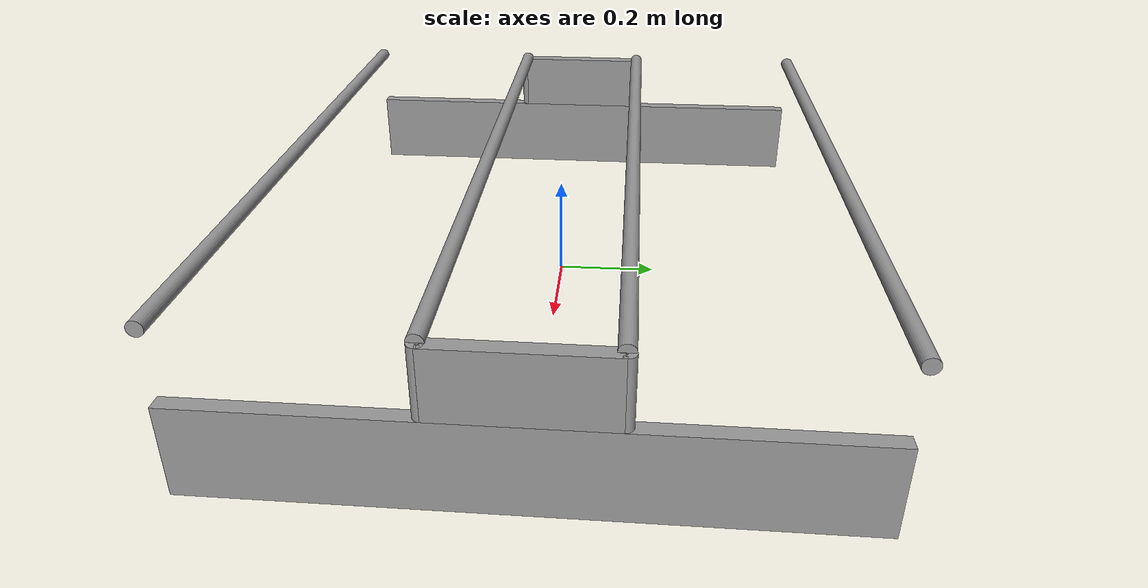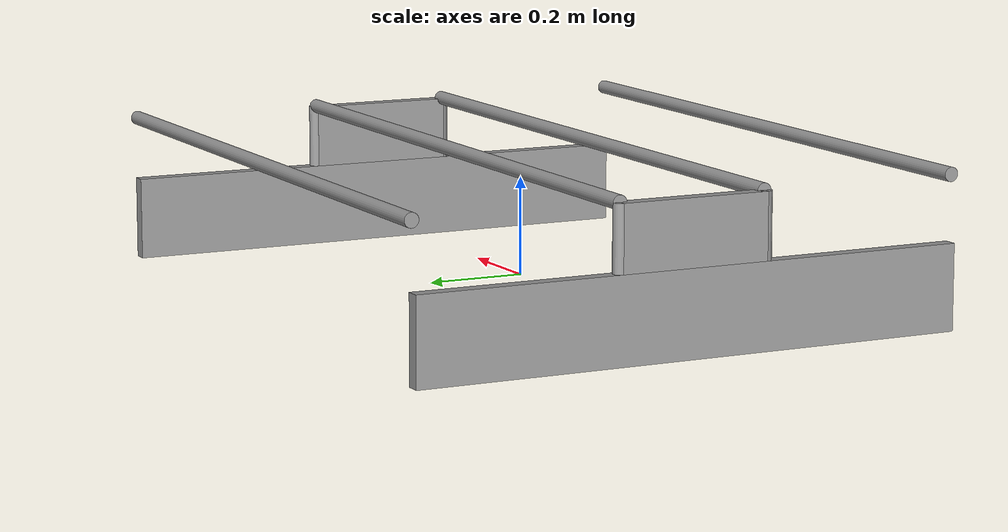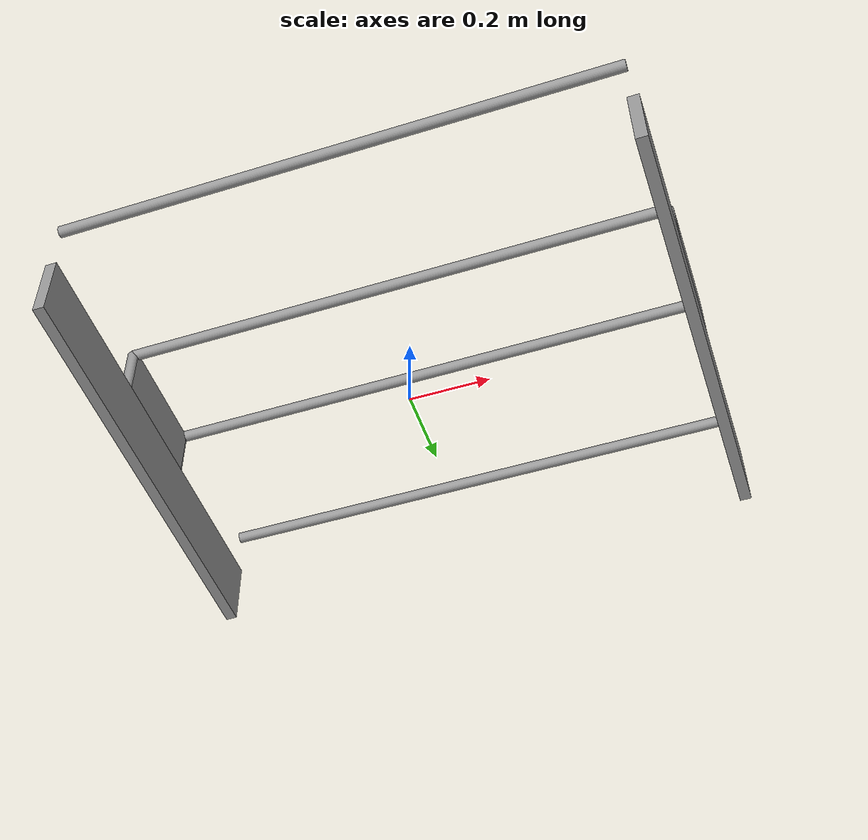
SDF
<?xml version='1.0'?>
<sdf version='1.7'>
  <model name='BlibliTrolley'>
    <link name='link_0'>
      <inertial>
        <mass>1</mass>
        <inertia>
          <ixx>0.166667</ixx>
          <ixy>0</ixy>
          <ixz>0</ixz>
          <iyy>0.166667</iyy>
          <iyz>0</iyz>
          <izz>0.166667</izz>
        </inertia>
        <pose>0 0 0 0 -0 0</pose>
      </inertial>
      <pose>0.7 0 0.050833 0 -0 0</pose>
      <gravity>1</gravity>
      <self_collide>0</self_collide>
      <kinematic>0</kinematic>
      <enable_wind>0</enable_wind>
      <visual name='visual'>
        <pose>0 0 0 0 -0 0</pose>
        <geometry>
          <box>
            <size>0.0284 1.12 0.17</size>
          </box>
        </geometry>
        <material>
          <lighting>1</lighting>
          <script>
            <uri>file://media/materials/scripts/gazebo.material</uri>
            <name>Gazebo/Grey</name>
          </script>
          <shader type='pixel'>
            <normal_map>__default__</normal_map>
          </shader>
          <ambient>0.3 0.3 0.3 1</ambient>
          <diffuse>0.7 0.7 0.7 1</diffuse>
          <specular>0.01 0.01 0.01 1</specular>
          <emissive>0 0 0 1</emissive>
        </material>
        <transparency>0</transparency>
        <cast_shadows>1</cast_shadows>
      </visual>
      <collision name='collision'>
        <laser_retro>0</laser_retro>
        <max_contacts>10</max_contacts>
        <pose>0 0 0 0 -0 0</pose>
        <geometry>
          <box>
            <size>0.0284 1.12 0.17</size>
          </box>
        </geometry>
        <surface>
          <friction>
            <ode>
              <mu>1</mu>
              <mu2>1</mu2>
              <fdir1>0 0 0</fdir1>
              <slip1>0</slip1>
              <slip2>0</slip2>
            </ode>
            <torsional>
              <coefficient>1</coefficient>
              <patch_radius>0</patch_radius>
              <surface_radius>0</surface_radius>
              <use_patch_radius>1</use_patch_radius>
              <ode>
                <slip>0</slip>
              </ode>
            </torsional>
          </friction>
          <bounce>
            <restitution_coefficient>0</restitution_coefficient>
            <threshold>1e+06</threshold>
          </bounce>
          <contact>
            <collide_without_contact>0</collide_without_contact>
            <collide_without_contact_bitmask>1</collide_without_contact_bitmask>
            <collide_bitmask>1</collide_bitmask>
            <ode>
              <soft_cfm>0</soft_cfm>
              <soft_erp>0.2</soft_erp>
              <kp>1e+13</kp>
              <kd>1</kd>
              <max_vel>0.01</max_vel>
              <min_depth>0</min_depth>
            </ode>
            <bullet>
              <split_impulse>1</split_impulse>
              <split_impulse_penetration_threshold>-0.01</split_impulse_penetration_threshold>
              <soft_cfm>0</soft_cfm>
              <soft_erp>0.2</soft_erp>
              <kp>1e+13</kp>
              <kd>1</kd>
            </bullet>
          </contact>
        </surface>
      </collision>
    </link>
    <link name='link_0_clone'>
      <inertial>
        <mass>1</mass>
        <inertia>
          <ixx>0.166667</ixx>
          <ixy>0</ixy>
          <ixz>0</ixz>
          <iyy>0.166667</iyy>
          <iyz>0</iyz>
          <izz>0.166667</izz>
        </inertia>
        <pose>0 0 0 0 -0 0</pose>
      </inertial>
      <pose>-0.7 0 0.050833 0 -0 0</pose>
      <gravity>1</gravity>
      <self_collide>0</self_collide>
      <kinematic>0</kinematic>
      <enable_wind>0</enable_wind>
      <visual name='visual'>
        <pose>0 0 0 0 -0 0</pose>
        <geometry>
          <box>
            <size>0.0284 1.12 0.17</size>
          </box>
        </geometry>
        <material>
          <lighting>1</lighting>
          <script>
            <uri>file://media/materials/scripts/gazebo.material</uri>
            <name>Gazebo/Grey</name>
          </script>
          <shader type='pixel'>
            <normal_map>__default__</normal_map>
          </shader>
          <ambient>0.3 0.3 0.3 1</ambient>
          <diffuse>0.7 0.7 0.7 1</diffuse>
          <specular>0.01 0.01 0.01 1</specular>
          <emissive>0 0 0 1</emissive>
        </material>
        <transparency>0</transparency>
        <cast_shadows>1</cast_shadows>
      </visual>
      <collision name='collision'>
        <laser_retro>0</laser_retro>
        <max_contacts>10</max_contacts>
        <pose>0 0 0 0 -0 0</pose>
        <geometry>
          <box>
            <size>0.0284 1.12 0.17</size>
          </box>
        </geometry>
        <surface>
          <friction>
            <ode>
              <mu>1</mu>
              <mu2>1</mu2>
              <fdir1>0 0 0</fdir1>
              <slip1>0</slip1>
              <slip2>0</slip2>
            </ode>
            <torsional>
              <coefficient>1</coefficient>
              <patch_radius>0</patch_radius>
              <surface_radius>0</surface_radius>
              <use_patch_radius>1</use_patch_radius>
              <ode>
                <slip>0</slip>
              </ode>
            </torsional>
          </friction>
          <bounce>
            <restitution_coefficient>0</restitution_coefficient>
            <threshold>1e+06</threshold>
          </bounce>
          <contact>
            <collide_without_contact>0</collide_without_contact>
            <collide_without_contact_bitmask>1</collide_without_contact_bitmask>
            <collide_bitmask>1</collide_bitmask>
            <ode>
              <soft_cfm>0</soft_cfm>
              <soft_erp>0.2</soft_erp>
              <kp>1e+13</kp>
              <kd>1</kd>
              <max_vel>0.01</max_vel>
              <min_depth>0</min_depth>
            </ode>
            <bullet>
              <split_impulse>1</split_impulse>
              <split_impulse_penetration_threshold>-0.01</split_impulse_penetration_threshold>
              <soft_cfm>0</soft_cfm>
              <soft_erp>0.2</soft_erp>
              <kp>1e+13</kp>
              <kd>1</kd>
            </bullet>
          </contact>
        </surface>
      </collision>
    </link>
    <link name='link_0_clone_clone'>
      <inertial>
        <mass>1</mass>
        <inertia>
          <ixx>0.166667</ixx>
          <ixy>0</ixy>
          <ixz>0</ixz>
          <iyy>0.166667</iyy>
          <iyz>0</iyz>
          <izz>0.166667</izz>
        </inertia>
        <pose>0 0 0 0 -0 0</pose>
      </inertial>
      <pose>-0.7 0 0.200833 0 -0 0</pose>
      <gravity>1</gravity>
      <self_collide>0</self_collide>
      <kinematic>0</kinematic>
      <enable_wind>0</enable_wind>
      <visual name='visual'>
        <pose>0 0 0 0 -0 0</pose>
        <geometry>
          <box>
            <size>0.0284 0.3 0.13</size>
          </box>
        </geometry>
        <material>
          <lighting>1</lighting>
          <script>
            <uri>file://media/materials/scripts/gazebo.material</uri>
            <name>Gazebo/Grey</name>
          </script>
          <shader type='pixel'>
            <normal_map>__default__</normal_map>
          </shader>
          <ambient>0.3 0.3 0.3 1</ambient>
          <diffuse>0.7 0.7 0.7 1</diffuse>
          <specular>0.01 0.01 0.01 1</specular>
          <emissive>0 0 0 1</emissive>
        </material>
        <transparency>0</transparency>
        <cast_shadows>1</cast_shadows>
      </visual>
      <collision name='collision'>
        <laser_retro>0</laser_retro>
        <max_contacts>10</max_contacts>
        <pose>0 0 0 0 -0 0</pose>
        <geometry>
          <box>
            <size>0.0284 0.3 0.13</size>
          </box>
        </geometry>
        <surface>
          <friction>
            <ode>
              <mu>1</mu>
              <mu2>1</mu2>
              <fdir1>0 0 0</fdir1>
              <slip1>0</slip1>
              <slip2>0</slip2>
            </ode>
            <torsional>
              <coefficient>1</coefficient>
              <patch_radius>0</patch_radius>
              <surface_radius>0</surface_radius>
              <use_patch_radius>1</use_patch_radius>
              <ode>
                <slip>0</slip>
              </ode>
            </torsional>
          </friction>
          <bounce>
            <restitution_coefficient>0</restitution_coefficient>
            <threshold>1e+06</threshold>
          </bounce>
          <contact>
            <collide_without_contact>0</collide_without_contact>
            <collide_without_contact_bitmask>1</collide_without_contact_bitmask>
            <collide_bitmask>1</collide_bitmask>
            <ode>
              <soft_cfm>0</soft_cfm>
              <soft_erp>0.2</soft_erp>
              <kp>1e+13</kp>
              <kd>1</kd>
              <max_vel>0.01</max_vel>
              <min_depth>0</min_depth>
            </ode>
            <bullet>
              <split_impulse>1</split_impulse>
              <split_impulse_penetration_threshold>-0.01</split_impulse_penetration_threshold>
              <soft_cfm>0</soft_cfm>
              <soft_erp>0.2</soft_erp>
              <kp>1e+13</kp>
              <kd>1</kd>
            </bullet>
          </contact>
        </surface>
      </collision>
    </link>
    <link name='link_0_clone_clone_clone'>
      <inertial>
        <mass>1</mass>
        <inertia>
          <ixx>0.166667</ixx>
          <ixy>0</ixy>
          <ixz>0</ixz>
          <iyy>0.166667</iyy>
          <iyz>0</iyz>
          <izz>0.166667</izz>
        </inertia>
        <pose>0 0 0 0 -0 0</pose>
      </inertial>
      <pose>0.7 0 0.200833 0 -0 0</pose>
      <gravity>1</gravity>
      <self_collide>0</self_collide>
      <kinematic>0</kinematic>
      <enable_wind>0</enable_wind>
      <visual name='visual'>
        <pose>0 0 0 0 -0 0</pose>
        <geometry>
          <box>
            <size>0.0284 0.3 0.13</size>
          </box>
        </geometry>
        <material>
          <lighting>1</lighting>
          <script>
            <uri>file://media/materials/scripts/gazebo.material</uri>
            <name>Gazebo/Grey</name>
          </script>
          <shader type='pixel'>
            <normal_map>__default__</normal_map>
          </shader>
          <ambient>0.3 0.3 0.3 1</ambient>
          <diffuse>0.7 0.7 0.7 1</diffuse>
          <specular>0.01 0.01 0.01 1</specular>
          <emissive>0 0 0 1</emissive>
        </material>
        <transparency>0</transparency>
        <cast_shadows>1</cast_shadows>
      </visual>
      <collision name='collision'>
        <laser_retro>0</laser_retro>
        <max_contacts>10</max_contacts>
        <pose>0 0 0 0 -0 0</pose>
        <geometry>
          <box>
            <size>0.0284 0.3 0.13</size>
          </box>
        </geometry>
        <surface>
          <friction>
            <ode>
              <mu>1</mu>
              <mu2>1</mu2>
              <fdir1>0 0 0</fdir1>
              <slip1>0</slip1>
              <slip2>0</slip2>
            </ode>
            <torsional>
              <coefficient>1</coefficient>
              <patch_radius>0</patch_radius>
              <surface_radius>0</surface_radius>
              <use_patch_radius>1</use_patch_radius>
              <ode>
                <slip>0</slip>
              </ode>
            </torsional>
          </friction>
          <bounce>
            <restitution_coefficient>0</restitution_coefficient>
            <threshold>1e+06</threshold>
          </bounce>
          <contact>
            <collide_without_contact>0</collide_without_contact>
            <collide_without_contact_bitmask>1</collide_without_contact_bitmask>
            <collide_bitmask>1</collide_bitmask>
            <ode>
              <soft_cfm>0</soft_cfm>
              <soft_erp>0.2</soft_erp>
              <kp>1e+13</kp>
              <kd>1</kd>
              <max_vel>0.01</max_vel>
              <min_depth>0</min_depth>
            </ode>
            <bullet>
              <split_impulse>1</split_impulse>
              <split_impulse_penetration_threshold>-0.01</split_impulse_penetration_threshold>
              <soft_cfm>0</soft_cfm>
              <soft_erp>0.2</soft_erp>
              <kp>1e+13</kp>
              <kd>1</kd>
            </bullet>
          </contact>
        </surface>
      </collision>
    </link>
    <link name='link_1'>
      <inertial>
        <mass>1</mass>
        <inertia>
          <ixx>0.145833</ixx>
          <ixy>0</ixy>
          <ixz>0</ixz>
          <iyy>0.145833</iyy>
          <iyz>0</iyz>
          <izz>0.125</izz>
        </inertia>
        <pose>0 0 0 0 -0 0</pose>
      </inertial>
      <pose>0.7 0.15 0.200833 0 -0 0</pose>
      <gravity>1</gravity>
      <self_collide>0</self_collide>
      <kinematic>0</kinematic>
      <enable_wind>0</enable_wind>
      <visual name='visual'>
        <pose>0 0 0 0 -0 0</pose>
        <geometry>
          <cylinder>
            <radius>0.0142</radius>
            <length>0.13</length>
          </cylinder>
        </geometry>
        <material>
          <lighting>1</lighting>
          <script>
            <uri>file://media/materials/scripts/gazebo.material</uri>
            <name>Gazebo/Grey</name>
          </script>
          <shader type='pixel'>
            <normal_map>__default__</normal_map>
          </shader>
          <ambient>0.3 0.3 0.3 1</ambient>
          <diffuse>0.7 0.7 0.7 1</diffuse>
          <specular>0.01 0.01 0.01 1</specular>
          <emissive>0 0 0 1</emissive>
        </material>
        <transparency>0</transparency>
        <cast_shadows>1</cast_shadows>
      </visual>
      <collision name='collision'>
        <laser_retro>0</laser_retro>
        <max_contacts>10</max_contacts>
        <pose>0 0 0 0 -0 0</pose>
        <geometry>
          <cylinder>
            <radius>0.0142</radius>
            <length>0.13</length>
          </cylinder>
        </geometry>
        <surface>
          <friction>
            <ode>
              <mu>1</mu>
              <mu2>1</mu2>
              <fdir1>0 0 0</fdir1>
              <slip1>0</slip1>
              <slip2>0</slip2>
            </ode>
            <torsional>
              <coefficient>1</coefficient>
              <patch_radius>0</patch_radius>
              <surface_radius>0</surface_radius>
              <use_patch_radius>1</use_patch_radius>
              <ode>
                <slip>0</slip>
              </ode>
            </torsional>
          </friction>
          <bounce>
            <restitution_coefficient>0</restitution_coefficient>
            <threshold>1e+06</threshold>
          </bounce>
          <contact>
            <collide_without_contact>0</collide_without_contact>
            <collide_without_contact_bitmask>1</collide_without_contact_bitmask>
            <collide_bitmask>1</collide_bitmask>
            <ode>
              <soft_cfm>0</soft_cfm>
              <soft_erp>0.2</soft_erp>
              <kp>1e+13</kp>
              <kd>1</kd>
              <max_vel>0.01</max_vel>
              <min_depth>0</min_depth>
            </ode>
            <bullet>
              <split_impulse>1</split_impulse>
              <split_impulse_penetration_threshold>-0.01</split_impulse_penetration_threshold>
              <soft_cfm>0</soft_cfm>
              <soft_erp>0.2</soft_erp>
              <kp>1e+13</kp>
              <kd>1</kd>
            </bullet>
          </contact>
        </surface>
      </collision>
    </link>
    <link name='link_1_clone'>
      <inertial>
        <mass>1</mass>
        <inertia>
          <ixx>0.145833</ixx>
          <ixy>0</ixy>
          <ixz>0</ixz>
          <iyy>0.145833</iyy>
          <iyz>0</iyz>
          <izz>0.125</izz>
        </inertia>
        <pose>0 0 0 0 -0 0</pose>
      </inertial>
      <pose>0.7 -0.15 0.200833 0 -0 0</pose>
      <gravity>1</gravity>
      <self_collide>0</self_collide>
      <kinematic>0</kinematic>
      <enable_wind>0</enable_wind>
      <visual name='visual'>
        <pose>0 0 0 0 -0 0</pose>
        <geometry>
          <cylinder>
            <radius>0.0142</radius>
            <length>0.13</length>
          </cylinder>
        </geometry>
        <material>
          <lighting>1</lighting>
          <script>
            <uri>file://media/materials/scripts/gazebo.material</uri>
            <name>Gazebo/Grey</name>
          </script>
          <shader type='pixel'>
            <normal_map>__default__</normal_map>
          </shader>
          <ambient>0.3 0.3 0.3 1</ambient>
          <diffuse>0.7 0.7 0.7 1</diffuse>
          <specular>0.01 0.01 0.01 1</specular>
          <emissive>0 0 0 1</emissive>
        </material>
        <transparency>0</transparency>
        <cast_shadows>1</cast_shadows>
      </visual>
      <collision name='collision'>
        <laser_retro>0</laser_retro>
        <max_contacts>10</max_contacts>
        <pose>0 0 0 0 -0 0</pose>
        <geometry>
          <cylinder>
            <radius>0.0142</radius>
            <length>0.13</length>
          </cylinder>
        </geometry>
        <surface>
          <friction>
            <ode>
              <mu>1</mu>
              <mu2>1</mu2>
              <fdir1>0 0 0</fdir1>
              <slip1>0</slip1>
              <slip2>0</slip2>
            </ode>
            <torsional>
              <coefficient>1</coefficient>
              <patch_radius>0</patch_radius>
              <surface_radius>0</surface_radius>
              <use_patch_radius>1</use_patch_radius>
              <ode>
                <slip>0</slip>
              </ode>
            </torsional>
          </friction>
          <bounce>
            <restitution_coefficient>0</restitution_coefficient>
            <threshold>1e+06</threshold>
          </bounce>
          <contact>
            <collide_without_contact>0</collide_without_contact>
            <collide_without_contact_bitmask>1</collide_without_contact_bitmask>
            <collide_bitmask>1</collide_bitmask>
            <ode>
              <soft_cfm>0</soft_cfm>
              <soft_erp>0.2</soft_erp>
              <kp>1e+13</kp>
              <kd>1</kd>
              <max_vel>0.01</max_vel>
              <min_depth>0</min_depth>
            </ode>
            <bullet>
              <split_impulse>1</split_impulse>
              <split_impulse_penetration_threshold>-0.01</split_impulse_penetration_threshold>
              <soft_cfm>0</soft_cfm>
              <soft_erp>0.2</soft_erp>
              <kp>1e+13</kp>
              <kd>1</kd>
            </bullet>
          </contact>
        </surface>
      </collision>
    </link>
    <link name='link_1_clone_0'>
      <inertial>
        <mass>1</mass>
        <inertia>
          <ixx>0.145833</ixx>
          <ixy>0</ixy>
          <ixz>0</ixz>
          <iyy>0.145833</iyy>
          <iyz>0</iyz>
          <izz>0.125</izz>
        </inertia>
        <pose>0 0 0 0 -0 0</pose>
      </inertial>
      <pose>-0.7 0.15 0.200833 0 -0 0</pose>
      <gravity>1</gravity>
      <self_collide>0</self_collide>
      <kinematic>0</kinematic>
      <enable_wind>0</enable_wind>
      <visual name='visual'>
        <pose>0 0 0 0 -0 0</pose>
        <geometry>
          <cylinder>
            <radius>0.0142</radius>
            <length>0.13</length>
          </cylinder>
        </geometry>
        <material>
          <lighting>1</lighting>
          <script>
            <uri>file://media/materials/scripts/gazebo.material</uri>
            <name>Gazebo/Grey</name>
          </script>
          <shader type='pixel'>
            <normal_map>__default__</normal_map>
          </shader>
          <ambient>0.3 0.3 0.3 1</ambient>
          <diffuse>0.7 0.7 0.7 1</diffuse>
          <specular>0.01 0.01 0.01 1</specular>
          <emissive>0 0 0 1</emissive>
        </material>
        <transparency>0</transparency>
        <cast_shadows>1</cast_shadows>
      </visual>
      <collision name='collision'>
        <laser_retro>0</laser_retro>
        <max_contacts>10</max_contacts>
        <pose>0 0 0 0 -0 0</pose>
        <geometry>
          <cylinder>
            <radius>0.0142</radius>
            <length>0.13</length>
          </cylinder>
        </geometry>
        <surface>
          <friction>
            <ode>
              <mu>1</mu>
              <mu2>1</mu2>
              <fdir1>0 0 0</fdir1>
              <slip1>0</slip1>
              <slip2>0</slip2>
            </ode>
            <torsional>
              <coefficient>1</coefficient>
              <patch_radius>0</patch_radius>
              <surface_radius>0</surface_radius>
              <use_patch_radius>1</use_patch_radius>
              <ode>
                <slip>0</slip>
              </ode>
            </torsional>
          </friction>
          <bounce>
            <restitution_coefficient>0</restitution_coefficient>
            <threshold>1e+06</threshold>
          </bounce>
          <contact>
            <collide_without_contact>0</collide_without_contact>
            <collide_without_contact_bitmask>1</collide_without_contact_bitmask>
            <collide_bitmask>1</collide_bitmask>
            <ode>
              <soft_cfm>0</soft_cfm>
              <soft_erp>0.2</soft_erp>
              <kp>1e+13</kp>
              <kd>1</kd>
              <max_vel>0.01</max_vel>
              <min_depth>0</min_depth>
            </ode>
            <bullet>
              <split_impulse>1</split_impulse>
              <split_impulse_penetration_threshold>-0.01</split_impulse_penetration_threshold>
              <soft_cfm>0</soft_cfm>
              <soft_erp>0.2</soft_erp>
              <kp>1e+13</kp>
              <kd>1</kd>
            </bullet>
          </contact>
        </surface>
      </collision>
    </link>
    <link name='link_1_clone_1'>
      <inertial>
        <mass>1</mass>
        <inertia>
          <ixx>0.145833</ixx>
          <ixy>0</ixy>
          <ixz>0</ixz>
          <iyy>0.145833</iyy>
          <iyz>0</iyz>
          <izz>0.125</izz>
        </inertia>
        <pose>0 0 0 0 -0 0</pose>
      </inertial>
      <pose>-0.7 -0.15 0.200833 0 -0 0</pose>
      <gravity>1</gravity>
      <self_collide>0</self_collide>
      <kinematic>0</kinematic>
      <enable_wind>0</enable_wind>
      <visual name='visual'>
        <pose>0 0 0 0 -0 0</pose>
        <geometry>
          <cylinder>
            <radius>0.0142</radius>
            <length>0.13</length>
          </cylinder>
        </geometry>
        <material>
          <lighting>1</lighting>
          <script>
            <uri>file://media/materials/scripts/gazebo.material</uri>
            <name>Gazebo/Grey</name>
          </script>
          <shader type='pixel'>
            <normal_map>__default__</normal_map>
          </shader>
          <ambient>0.3 0.3 0.3 1</ambient>
          <diffuse>0.7 0.7 0.7 1</diffuse>
          <specular>0.01 0.01 0.01 1</specular>
          <emissive>0 0 0 1</emissive>
        </material>
        <transparency>0</transparency>
        <cast_shadows>1</cast_shadows>
      </visual>
      <collision name='collision'>
        <laser_retro>0</laser_retro>
        <max_contacts>10</max_contacts>
        <pose>0 0 0 0 -0 0</pose>
        <geometry>
          <cylinder>
            <radius>0.0142</radius>
            <length>0.13</length>
          </cylinder>
        </geometry>
        <surface>
          <friction>
            <ode>
              <mu>1</mu>
              <mu2>1</mu2>
              <fdir1>0 0 0</fdir1>
              <slip1>0</slip1>
              <slip2>0</slip2>
            </ode>
            <torsional>
              <coefficient>1</coefficient>
              <patch_radius>0</patch_radius>
              <surface_radius>0</surface_radius>
              <use_patch_radius>1</use_patch_radius>
              <ode>
                <slip>0</slip>
              </ode>
            </torsional>
          </friction>
          <bounce>
            <restitution_coefficient>0</restitution_coefficient>
            <threshold>1e+06</threshold>
          </bounce>
          <contact>
            <collide_without_contact>0</collide_without_contact>
            <collide_without_contact_bitmask>1</collide_without_contact_bitmask>
            <collide_bitmask>1</collide_bitmask>
            <ode>
              <soft_cfm>0</soft_cfm>
              <soft_erp>0.2</soft_erp>
              <kp>1e+13</kp>
              <kd>1</kd>
              <max_vel>0.01</max_vel>
              <min_depth>0</min_depth>
            </ode>
            <bullet>
              <split_impulse>1</split_impulse>
              <split_impulse_penetration_threshold>-0.01</split_impulse_penetration_threshold>
              <soft_cfm>0</soft_cfm>
              <soft_erp>0.2</soft_erp>
              <kp>1e+13</kp>
              <kd>1</kd>
            </bullet>
          </contact>
        </surface>
      </collision>
    </link>
    <link name='link_2'>
      <inertial>
        <mass>1</mass>
        <inertia>
          <ixx>0.145833</ixx>
          <ixy>0</ixy>
          <ixz>0</ixz>
          <iyy>0.145833</iyy>
          <iyz>0</iyz>
          <izz>0.125</izz>
        </inertia>
        <pose>0 0 0 0 -0 0</pose>
      </inertial>
      <pose>0 0.56 0.265833 1.57 -0 1.57</pose>
      <gravity>1</gravity>
      <self_collide>0</self_collide>
      <kinematic>0</kinematic>
      <enable_wind>0</enable_wind>
      <visual name='visual'>
        <pose>0 0 0 0 -0 0</pose>
        <geometry>
          <cylinder>
            <radius>0.0142</radius>
            <length>1.4</length>
          </cylinder>
        </geometry>
        <material>
          <lighting>1</lighting>
          <script>
            <uri>file://media/materials/scripts/gazebo.material</uri>
            <name>Gazebo/Grey</name>
          </script>
          <shader type='pixel'>
            <normal_map>__default__</normal_map>
          </shader>
          <ambient>0.3 0.3 0.3 1</ambient>
          <diffuse>0.7 0.7 0.7 1</diffuse>
          <specular>0.01 0.01 0.01 1</specular>
          <emissive>0 0 0 1</emissive>
        </material>
        <transparency>0</transparency>
        <cast_shadows>1</cast_shadows>
      </visual>
      <collision name='collision'>
        <laser_retro>0</laser_retro>
        <max_contacts>10</max_contacts>
        <pose>0 0 0 0 -0 0</pose>
        <geometry>
          <cylinder>
            <radius>0.0142</radius>
            <length>1.4</length>
          </cylinder>
        </geometry>
        <surface>
          <friction>
            <ode>
              <mu>1</mu>
              <mu2>1</mu2>
              <fdir1>0 0 0</fdir1>
              <slip1>0</slip1>
              <slip2>0</slip2>
            </ode>
            <torsional>
              <coefficient>1</coefficient>
              <patch_radius>0</patch_radius>
              <surface_radius>0</surface_radius>
              <use_patch_radius>1</use_patch_radius>
              <ode>
                <slip>0</slip>
              </ode>
            </torsional>
          </friction>
          <bounce>
            <restitution_coefficient>0</restitution_coefficient>
            <threshold>1e+06</threshold>
          </bounce>
          <contact>
            <collide_without_contact>0</collide_without_contact>
            <collide_without_contact_bitmask>1</collide_without_contact_bitmask>
            <collide_bitmask>1</collide_bitmask>
            <ode>
              <soft_cfm>0</soft_cfm>
              <soft_erp>0.2</soft_erp>
              <kp>1e+13</kp>
              <kd>1</kd>
              <max_vel>0.01</max_vel>
              <min_depth>0</min_depth>
            </ode>
            <bullet>
              <split_impulse>1</split_impulse>
              <split_impulse_penetration_threshold>-0.01</split_impulse_penetration_threshold>
              <soft_cfm>0</soft_cfm>
              <soft_erp>0.2</soft_erp>
              <kp>1e+13</kp>
              <kd>1</kd>
            </bullet>
          </contact>
        </surface>
      </collision>
    </link>
    <link name='link_2_clone'>
      <inertial>
        <mass>1</mass>
        <inertia>
          <ixx>0.145833</ixx>
          <ixy>0</ixy>
          <ixz>0</ixz>
          <iyy>0.145833</iyy>
          <iyz>0</iyz>
          <izz>0.125</izz>
        </inertia>
        <pose>0 0 0 0 -0 0</pose>
      </inertial>
      <pose>0 -0.56 0.265833 1.57 -0 1.57</pose>
      <gravity>1</gravity>
      <self_collide>0</self_collide>
      <kinematic>0</kinematic>
      <enable_wind>0</enable_wind>
      <visual name='visual'>
        <pose>0 0 0 0 -0 0</pose>
        <geometry>
          <cylinder>
            <radius>0.0142</radius>
            <length>1.4</length>
          </cylinder>
        </geometry>
        <material>
          <lighting>1</lighting>
          <script>
            <uri>file://media/materials/scripts/gazebo.material</uri>
            <name>Gazebo/Grey</name>
          </script>
          <shader type='pixel'>
            <normal_map>__default__</normal_map>
          </shader>
          <ambient>0.3 0.3 0.3 1</ambient>
          <diffuse>0.7 0.7 0.7 1</diffuse>
          <specular>0.01 0.01 0.01 1</specular>
          <emissive>0 0 0 1</emissive>
        </material>
        <transparency>0</transparency>
        <cast_shadows>1</cast_shadows>
      </visual>
      <collision name='collision'>
        <laser_retro>0</laser_retro>
        <max_contacts>10</max_contacts>
        <pose>0 0 0 0 -0 0</pose>
        <geometry>
          <cylinder>
            <radius>0.0142</radius>
            <length>1.4</length>
          </cylinder>
        </geometry>
        <surface>
          <friction>
            <ode>
              <mu>1</mu>
              <mu2>1</mu2>
              <fdir1>0 0 0</fdir1>
              <slip1>0</slip1>
              <slip2>0</slip2>
            </ode>
            <torsional>
              <coefficient>1</coefficient>
              <patch_radius>0</patch_radius>
              <surface_radius>0</surface_radius>
              <use_patch_radius>1</use_patch_radius>
              <ode>
                <slip>0</slip>
              </ode>
            </torsional>
          </friction>
          <bounce>
            <restitution_coefficient>0</restitution_coefficient>
            <threshold>1e+06</threshold>
          </bounce>
          <contact>
            <collide_without_contact>0</collide_without_contact>
            <collide_without_contact_bitmask>1</collide_without_contact_bitmask>
            <collide_bitmask>1</collide_bitmask>
            <ode>
              <soft_cfm>0</soft_cfm>
              <soft_erp>0.2</soft_erp>
              <kp>1e+13</kp>
              <kd>1</kd>
              <max_vel>0.01</max_vel>
              <min_depth>0</min_depth>
            </ode>
            <bullet>
              <split_impulse>1</split_impulse>
              <split_impulse_penetration_threshold>-0.01</split_impulse_penetration_threshold>
              <soft_cfm>0</soft_cfm>
              <soft_erp>0.2</soft_erp>
              <kp>1e+13</kp>
              <kd>1</kd>
            </bullet>
          </contact>
        </surface>
      </collision>
    </link>
    <link name='link_2_clone_0'>
      <inertial>
        <mass>1</mass>
        <inertia>
          <ixx>0.145833</ixx>
          <ixy>0</ixy>
          <ixz>0</ixz>
          <iyy>0.145833</iyy>
          <iyz>0</iyz>
          <izz>0.125</izz>
        </inertia>
        <pose>0 0 0 0 -0 0</pose>
      </inertial>
      <pose>0 0.15 0.265833 1.57 -0 1.57</pose>
      <gravity>1</gravity>
      <self_collide>0</self_collide>
      <kinematic>0</kinematic>
      <enable_wind>0</enable_wind>
      <visual name='visual'>
        <pose>0 0 0 0 -0 0</pose>
        <geometry>
          <cylinder>
            <radius>0.0142</radius>
            <length>1.4</length>
          </cylinder>
        </geometry>
        <material>
          <lighting>1</lighting>
          <script>
            <uri>file://media/materials/scripts/gazebo.material</uri>
            <name>Gazebo/Grey</name>
          </script>
          <shader type='pixel'>
            <normal_map>__default__</normal_map>
          </shader>
          <ambient>0.3 0.3 0.3 1</ambient>
          <diffuse>0.7 0.7 0.7 1</diffuse>
          <specular>0.01 0.01 0.01 1</specular>
          <emissive>0 0 0 1</emissive>
        </material>
        <transparency>0</transparency>
        <cast_shadows>1</cast_shadows>
      </visual>
      <collision name='collision'>
        <laser_retro>0</laser_retro>
        <max_contacts>10</max_contacts>
        <pose>0 0 0 0 -0 0</pose>
        <geometry>
          <cylinder>
            <radius>0.0142</radius>
            <length>1.4</length>
          </cylinder>
        </geometry>
        <surface>
          <friction>
            <ode>
              <mu>1</mu>
              <mu2>1</mu2>
              <fdir1>0 0 0</fdir1>
              <slip1>0</slip1>
              <slip2>0</slip2>
            </ode>
            <torsional>
              <coefficient>1</coefficient>
              <patch_radius>0</patch_radius>
              <surface_radius>0</surface_radius>
              <use_patch_radius>1</use_patch_radius>
              <ode>
                <slip>0</slip>
              </ode>
            </torsional>
          </friction>
          <bounce>
            <restitution_coefficient>0</restitution_coefficient>
            <threshold>1e+06</threshold>
          </bounce>
          <contact>
            <collide_without_contact>0</collide_without_contact>
            <collide_without_contact_bitmask>1</collide_without_contact_bitmask>
            <collide_bitmask>1</collide_bitmask>
            <ode>
              <soft_cfm>0</soft_cfm>
              <soft_erp>0.2</soft_erp>
              <kp>1e+13</kp>
              <kd>1</kd>
              <max_vel>0.01</max_vel>
              <min_depth>0</min_depth>
            </ode>
            <bullet>
              <split_impulse>1</split_impulse>
              <split_impulse_penetration_threshold>-0.01</split_impulse_penetration_threshold>
              <soft_cfm>0</soft_cfm>
              <soft_erp>0.2</soft_erp>
              <kp>1e+13</kp>
              <kd>1</kd>
            </bullet>
          </contact>
        </surface>
      </collision>
    </link>
    <link name='link_2_clone_1'>
      <inertial>
        <mass>1</mass>
        <inertia>
          <ixx>0.145833</ixx>
          <ixy>0</ixy>
          <ixz>0</ixz>
          <iyy>0.145833</iyy>
          <iyz>0</iyz>
          <izz>0.125</izz>
        </inertia>
        <pose>0 0 0 0 -0 0</pose>
      </inertial>
      <pose>0 -0.15 0.265833 1.57 -0 1.57</pose>
      <gravity>1</gravity>
      <self_collide>0</self_collide>
      <kinematic>0</kinematic>
      <enable_wind>0</enable_wind>
      <visual name='visual'>
        <pose>0 0 0 0 -0 0</pose>
        <geometry>
          <cylinder>
            <radius>0.0142</radius>
            <length>1.4</length>
          </cylinder>
        </geometry>
        <material>
          <lighting>1</lighting>
          <script>
            <uri>file://media/materials/scripts/gazebo.material</uri>
            <name>Gazebo/Grey</name>
          </script>
          <shader type='pixel'>
            <normal_map>__default__</normal_map>
          </shader>
          <ambient>0.3 0.3 0.3 1</ambient>
          <diffuse>0.7 0.7 0.7 1</diffuse>
          <specular>0.01 0.01 0.01 1</specular>
          <emissive>0 0 0 1</emissive>
        </material>
        <transparency>0</transparency>
        <cast_shadows>1</cast_shadows>
      </visual>
      <collision name='collision'>
        <laser_retro>0</laser_retro>
        <max_contacts>10</max_contacts>
        <pose>0 0 0 0 -0 0</pose>
        <geometry>
          <cylinder>
            <radius>0.0142</radius>
            <length>1.4</length>
          </cylinder>
        </geometry>
        <surface>
          <friction>
            <ode>
              <mu>1</mu>
              <mu2>1</mu2>
              <fdir1>0 0 0</fdir1>
              <slip1>0</slip1>
              <slip2>0</slip2>
            </ode>
            <torsional>
              <coefficient>1</coefficient>
              <patch_radius>0</patch_radius>
              <surface_radius>0</surface_radius>
              <use_patch_radius>1</use_patch_radius>
              <ode>
                <slip>0</slip>
              </ode>
            </torsional>
          </friction>
          <bounce>
            <restitution_coefficient>0</restitution_coefficient>
            <threshold>1e+06</threshold>
          </bounce>
          <contact>
            <collide_without_contact>0</collide_without_contact>
            <collide_without_contact_bitmask>1</collide_without_contact_bitmask>
            <collide_bitmask>1</collide_bitmask>
            <ode>
              <soft_cfm>0</soft_cfm>
              <soft_erp>0.2</soft_erp>
              <kp>1e+13</kp>
              <kd>1</kd>
              <max_vel>0.01</max_vel>
              <min_depth>0</min_depth>
            </ode>
            <bullet>
              <split_impulse>1</split_impulse>
              <split_impulse_penetration_threshold>-0.01</split_impulse_penetration_threshold>
              <soft_cfm>0</soft_cfm>
              <soft_erp>0.2</soft_erp>
              <kp>1e+13</kp>
              <kd>1</kd>
            </bullet>
          </contact>
        </surface>
      </collision>
    </link>
    <static>1</static>
    <allow_auto_disable>1</allow_auto_disable>
  </model>
</sdf>
